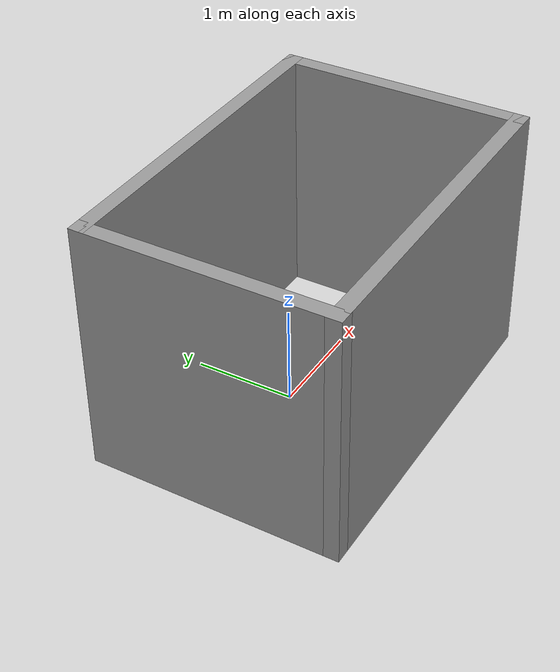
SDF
<?xml version='1.0'?>
<sdf version='1.7'>
  <model name='World_test'>
    <pose>0.135435 -0.170217 0 0 -0 0</pose>
    <link name='Wall_0'>
      <collision name='Wall_0_Collision'>
        <geometry>
          <box>
            <size>2.5 0.15 2.5</size>
          </box>
        </geometry>
        <pose>0 0 1.25 0 -0 0</pose>
      </collision>
      <visual name='Wall_0_Visual'>
        <pose>0 0 1.25 0 -0 0</pose>
        <geometry>
          <box>
            <size>2.5 0.15 2.5</size>
          </box>
        </geometry>
        <material>
          <script>
            <uri>file://media/materials/scripts/gazebo.material</uri>
            <name>Gazebo/Grey</name>
          </script>
          <ambient>1 1 1 1</ambient>
        </material>
        <meta>
          <layer>0</layer>
        </meta>
      </visual>
      <pose>-1.675 0 0 0 -0 1.5708</pose>
    </link>
    <link name='Wall_1'>
      <collision name='Wall_1_Collision'>
        <geometry>
          <box>
            <size>3.5 0.15 2.5</size>
          </box>
        </geometry>
        <pose>0 0 1.25 0 -0 0</pose>
      </collision>
      <visual name='Wall_1_Visual'>
        <pose>0 0 1.25 0 -0 0</pose>
        <geometry>
          <box>
            <size>3.5 0.15 2.5</size>
          </box>
        </geometry>
        <material>
          <script>
            <uri>file://media/materials/scripts/gazebo.material</uri>
            <name>Gazebo/Grey</name>
          </script>
          <ambient>1 1 1 1</ambient>
        </material>
        <meta>
          <layer>0</layer>
        </meta>
      </visual>
      <pose>-0 1.175 0 0 -0 0</pose>
    </link>
    <link name='Wall_2'>
      <collision name='Wall_2_Collision'>
        <geometry>
          <box>
            <size>2.5 0.15 2.5</size>
          </box>
        </geometry>
        <pose>0 0 1.25 0 -0 0</pose>
      </collision>
      <visual name='Wall_2_Visual'>
        <pose>0 0 1.25 0 -0 0</pose>
        <geometry>
          <box>
            <size>2.5 0.15 2.5</size>
          </box>
        </geometry>
        <material>
          <script>
            <uri>file://media/materials/scripts/gazebo.material</uri>
            <name>Gazebo/Grey</name>
          </script>
          <ambient>1 1 1 1</ambient>
        </material>
        <meta>
          <layer>0</layer>
        </meta>
      </visual>
      <pose>1.675 0 0 0 -0 -1.5708</pose>
    </link>
    <link name='Wall_3'>
      <collision name='Wall_3_Collision'>
        <geometry>
          <box>
            <size>3.5 0.15 2.5</size>
          </box>
        </geometry>
        <pose>0 0 1.25 0 -0 0</pose>
      </collision>
      <visual name='Wall_3_Visual'>
        <pose>0 0 1.25 0 -0 0</pose>
        <geometry>
          <box>
            <size>3.5 0.15 2.5</size>
          </box>
        </geometry>
        <material>
          <script>
            <uri>file://media/materials/scripts/gazebo.material</uri>
            <name>Gazebo/Grey</name>
          </script>
          <ambient>1 1 1 1</ambient>
        </material>
        <meta>
          <layer>0</layer>
        </meta>
      </visual>
      <pose>-0 -1.175 0 0 -0 3.14159</pose>
    </link>
    <static>1</static>
  </model>
</sdf>
